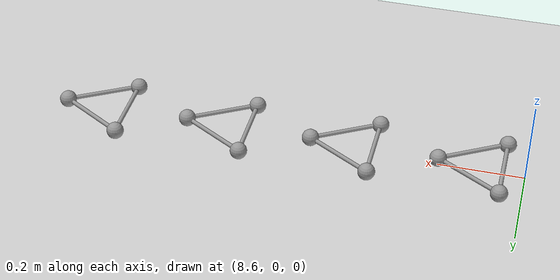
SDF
<sdf version="1.6">
 <world name="default">
  <include><uri>model://ground_plane</uri></include>
  <include><uri>model://sun</uri></include>
  <model name="triball_29">
   <pose>8.7 0 0 0 0 0</pose>
   <link name="link">
    <pose>0 0 0.02 0 0 0</pose>
    <inertial>
     <mass>0.060318578948924034</mass>
     <inertia>
      <ixx>0.000311243867376448</ixx>
      <iyy>0.000311243867376448</iyy>
      <izz>0.0006128367621210681</izz>
      <ixy>0.0</ixy>
      <ixz>0.0</ixz>
      <iyz>0.0</iyz>
     </inertia>
    </inertial>
    <sensor name="imu" type="imu"><always_on>true</always_on></sensor>
    <collision name="collision_a">
     <pose>0.09999999999999999 0 0  0 0 0</pose>
     <geometry><sphere><radius>0.02</radius></sphere></geometry>
     <surface><friction><ode><mu>0.9</mu><mu2>0.9</mu2><fdir1>1 0 0</fdir1></ode></friction></surface>
    </collision>
    <visual name="visual_a">
     <pose>0.09999999999999999 0 0  0 0 0</pose>
     <geometry><sphere><radius>0.02</radius></sphere></geometry>
     <material>
      <script><uri>file://media/materials/scripts/gazebo.material</uri><name>Gazebo/Grey</name></script>
     </material>
    </visual>
    <collision name="collision_a_to_b">
     <pose>0.024999999999999998 0.04330127018922193 0.0  -1.5707962969925737 -1.0471975511965974 1.047197525387029</pose>
     <geometry><cylinder><radius>0.005</radius><length>0.17320508075688773</length></cylinder></geometry>
     <surface><friction><ode><mu>0.9</mu><mu2>0.9</mu2></ode></friction></surface>
    </collision>
    <visual name="visual_a_to_b">
     <pose>0.024999999999999998 0.04330127018922193 0.0  -1.5707962969925737 -1.0471975511965974 1.047197525387029</pose>
     <geometry><cylinder><radius>0.005</radius><length>0.17320508075688773</length></cylinder></geometry>
     <material>
      <script><uri>file://media/materials/scripts/gazebo.material</uri><name>Gazebo/Grey</name></script>
     </material>
    </visual>
    <collision name="collision_a_to_c">
     <pose>0.024999999999999998 -0.04330127018922193 0.0  1.5707962969925737 -1.0471975511965974 -1.047197525387029</pose>
     <geometry><cylinder><radius>0.005</radius><length>0.17320508075688773</length></cylinder></geometry>
     <surface><friction><ode><mu>0.9</mu><mu2>0.9</mu2></ode></friction></surface>
    </collision>
    <visual name="visual_a_to_c">
     <pose>0.024999999999999998 -0.04330127018922193 0.0  1.5707962969925737 -1.0471975511965974 -1.047197525387029</pose>
     <geometry><cylinder><radius>0.005</radius><length>0.17320508075688773</length></cylinder></geometry>
     <material>
      <script><uri>file://media/materials/scripts/gazebo.material</uri><name>Gazebo/Grey</name></script>
     </material>
    </visual>
    <collision name="collision_b">
     <pose>-0.049999999999999996 0.08660254037844387 0  0 0 0</pose>
     <geometry><sphere><radius>0.02</radius></sphere></geometry>
     <surface><friction><ode><mu>0.9</mu><mu2>0.9</mu2><fdir1>1 0 0</fdir1></ode></friction></surface>
    </collision>
    <visual name="visual_b">
     <pose>-0.049999999999999996 0.08660254037844387 0  0 0 0</pose>
     <geometry><sphere><radius>0.02</radius></sphere></geometry>
     <material>
      <script><uri>file://media/materials/scripts/gazebo.material</uri><name>Gazebo/Grey</name></script>
     </material>
    </visual>
    <collision name="collision_b_to_c">
     <pose>-0.049999999999999996 0.0 0.0  1.5707963267948963 -0.0 0.0</pose>
     <geometry><cylinder><radius>0.005</radius><length>0.17320508075688773</length></cylinder></geometry>
     <surface><friction><ode><mu>0.9</mu><mu2>0.9</mu2></ode></friction></surface>
    </collision>
    <visual name="visual_b_to_c">
     <pose>-0.049999999999999996 0.0 0.0  1.5707963267948963 -0.0 0.0</pose>
     <geometry><cylinder><radius>0.005</radius><length>0.17320508075688773</length></cylinder></geometry>
     <material>
      <script><uri>file://media/materials/scripts/gazebo.material</uri><name>Gazebo/Grey</name></script>
     </material>
    </visual>
    <collision name="collision_c">
     <pose>-0.049999999999999996 -0.08660254037844387 0  0 0 0</pose>
     <geometry><sphere><radius>0.02</radius></sphere></geometry>
     <surface><friction><ode><mu>0.9</mu><mu2>0.9</mu2><fdir1>1 0 0</fdir1></ode></friction></surface>
    </collision>
    <visual name="visual_c">
     <pose>-0.049999999999999996 -0.08660254037844387 0  0 0 0</pose>
     <geometry><sphere><radius>0.02</radius></sphere></geometry>
     <material>
      <script><uri>file://media/materials/scripts/gazebo.material</uri><name>Gazebo/Grey</name></script>
     </material>
    </visual>
   </link>
   <plugin name="triball_29" filename="libInitialVelocityPlugin.so">
    <linear>0 15 0</linear>
    <angular>0 0 121.875</angular>
   </plugin>
  </model>
  <model name="triball_30">
   <pose>9.0 0 0 0 0 0</pose>
   <link name="link">
    <pose>0 0 0.02 0 0 0</pose>
    <inertial>
     <mass>0.060318578948924034</mass>
     <inertia>
      <ixx>0.000311243867376448</ixx>
      <iyy>0.000311243867376448</iyy>
      <izz>0.0006128367621210681</izz>
      <ixy>0.0</ixy>
      <ixz>0.0</ixz>
      <iyz>0.0</iyz>
     </inertia>
    </inertial>
    <sensor name="imu" type="imu"><always_on>true</always_on></sensor>
    <collision name="collision_a">
     <pose>0.09999999999999999 0 0  0 0 0</pose>
     <geometry><sphere><radius>0.02</radius></sphere></geometry>
     <surface><friction><ode><mu>0.9</mu><mu2>0.9</mu2><fdir1>1 0 0</fdir1></ode></friction></surface>
    </collision>
    <visual name="visual_a">
     <pose>0.09999999999999999 0 0  0 0 0</pose>
     <geometry><sphere><radius>0.02</radius></sphere></geometry>
     <material>
      <script><uri>file://media/materials/scripts/gazebo.material</uri><name>Gazebo/Grey</name></script>
     </material>
    </visual>
    <collision name="collision_a_to_b">
     <pose>0.024999999999999998 0.04330127018922193 0.0  -1.5707962969925737 -1.0471975511965974 1.047197525387029</pose>
     <geometry><cylinder><radius>0.005</radius><length>0.17320508075688773</length></cylinder></geometry>
     <surface><friction><ode><mu>0.9</mu><mu2>0.9</mu2></ode></friction></surface>
    </collision>
    <visual name="visual_a_to_b">
     <pose>0.024999999999999998 0.04330127018922193 0.0  -1.5707962969925737 -1.0471975511965974 1.047197525387029</pose>
     <geometry><cylinder><radius>0.005</radius><length>0.17320508075688773</length></cylinder></geometry>
     <material>
      <script><uri>file://media/materials/scripts/gazebo.material</uri><name>Gazebo/Grey</name></script>
     </material>
    </visual>
    <collision name="collision_a_to_c">
     <pose>0.024999999999999998 -0.04330127018922193 0.0  1.5707962969925737 -1.0471975511965974 -1.047197525387029</pose>
     <geometry><cylinder><radius>0.005</radius><length>0.17320508075688773</length></cylinder></geometry>
     <surface><friction><ode><mu>0.9</mu><mu2>0.9</mu2></ode></friction></surface>
    </collision>
    <visual name="visual_a_to_c">
     <pose>0.024999999999999998 -0.04330127018922193 0.0  1.5707962969925737 -1.0471975511965974 -1.047197525387029</pose>
     <geometry><cylinder><radius>0.005</radius><length>0.17320508075688773</length></cylinder></geometry>
     <material>
      <script><uri>file://media/materials/scripts/gazebo.material</uri><name>Gazebo/Grey</name></script>
     </material>
    </visual>
    <collision name="collision_b">
     <pose>-0.049999999999999996 0.08660254037844387 0  0 0 0</pose>
     <geometry><sphere><radius>0.02</radius></sphere></geometry>
     <surface><friction><ode><mu>0.9</mu><mu2>0.9</mu2><fdir1>1 0 0</fdir1></ode></friction></surface>
    </collision>
    <visual name="visual_b">
     <pose>-0.049999999999999996 0.08660254037844387 0  0 0 0</pose>
     <geometry><sphere><radius>0.02</radius></sphere></geometry>
     <material>
      <script><uri>file://media/materials/scripts/gazebo.material</uri><name>Gazebo/Grey</name></script>
     </material>
    </visual>
    <collision name="collision_b_to_c">
     <pose>-0.049999999999999996 0.0 0.0  1.5707963267948963 -0.0 0.0</pose>
     <geometry><cylinder><radius>0.005</radius><length>0.17320508075688773</length></cylinder></geometry>
     <surface><friction><ode><mu>0.9</mu><mu2>0.9</mu2></ode></friction></surface>
    </collision>
    <visual name="visual_b_to_c">
     <pose>-0.049999999999999996 0.0 0.0  1.5707963267948963 -0.0 0.0</pose>
     <geometry><cylinder><radius>0.005</radius><length>0.17320508075688773</length></cylinder></geometry>
     <material>
      <script><uri>file://media/materials/scripts/gazebo.material</uri><name>Gazebo/Grey</name></script>
     </material>
    </visual>
    <collision name="collision_c">
     <pose>-0.049999999999999996 -0.08660254037844387 0  0 0 0</pose>
     <geometry><sphere><radius>0.02</radius></sphere></geometry>
     <surface><friction><ode><mu>0.9</mu><mu2>0.9</mu2><fdir1>1 0 0</fdir1></ode></friction></surface>
    </collision>
    <visual name="visual_c">
     <pose>-0.049999999999999996 -0.08660254037844387 0  0 0 0</pose>
     <geometry><sphere><radius>0.02</radius></sphere></geometry>
     <material>
      <script><uri>file://media/materials/scripts/gazebo.material</uri><name>Gazebo/Grey</name></script>
     </material>
    </visual>
   </link>
   <plugin name="triball_30" filename="libInitialVelocityPlugin.so">
    <linear>0 15 0</linear>
    <angular>0 0 131.25</angular>
   </plugin>
  </model>
  <model name="triball_31">
   <pose>9.299999999999999 0 0 0 0 0</pose>
   <link name="link">
    <pose>0 0 0.02 0 0 0</pose>
    <inertial>
     <mass>0.060318578948924034</mass>
     <inertia>
      <ixx>0.000311243867376448</ixx>
      <iyy>0.000311243867376448</iyy>
      <izz>0.0006128367621210681</izz>
      <ixy>0.0</ixy>
      <ixz>0.0</ixz>
      <iyz>0.0</iyz>
     </inertia>
    </inertial>
    <sensor name="imu" type="imu"><always_on>true</always_on></sensor>
    <collision name="collision_a">
     <pose>0.09999999999999999 0 0  0 0 0</pose>
     <geometry><sphere><radius>0.02</radius></sphere></geometry>
     <surface><friction><ode><mu>0.9</mu><mu2>0.9</mu2><fdir1>1 0 0</fdir1></ode></friction></surface>
    </collision>
    <visual name="visual_a">
     <pose>0.09999999999999999 0 0  0 0 0</pose>
     <geometry><sphere><radius>0.02</radius></sphere></geometry>
     <material>
      <script><uri>file://media/materials/scripts/gazebo.material</uri><name>Gazebo/Grey</name></script>
     </material>
    </visual>
    <collision name="collision_a_to_b">
     <pose>0.024999999999999998 0.04330127018922193 0.0  -1.5707962969925737 -1.0471975511965974 1.047197525387029</pose>
     <geometry><cylinder><radius>0.005</radius><length>0.17320508075688773</length></cylinder></geometry>
     <surface><friction><ode><mu>0.9</mu><mu2>0.9</mu2></ode></friction></surface>
    </collision>
    <visual name="visual_a_to_b">
     <pose>0.024999999999999998 0.04330127018922193 0.0  -1.5707962969925737 -1.0471975511965974 1.047197525387029</pose>
     <geometry><cylinder><radius>0.005</radius><length>0.17320508075688773</length></cylinder></geometry>
     <material>
      <script><uri>file://media/materials/scripts/gazebo.material</uri><name>Gazebo/Grey</name></script>
     </material>
    </visual>
    <collision name="collision_a_to_c">
     <pose>0.024999999999999998 -0.04330127018922193 0.0  1.5707962969925737 -1.0471975511965974 -1.047197525387029</pose>
     <geometry><cylinder><radius>0.005</radius><length>0.17320508075688773</length></cylinder></geometry>
     <surface><friction><ode><mu>0.9</mu><mu2>0.9</mu2></ode></friction></surface>
    </collision>
    <visual name="visual_a_to_c">
     <pose>0.024999999999999998 -0.04330127018922193 0.0  1.5707962969925737 -1.0471975511965974 -1.047197525387029</pose>
     <geometry><cylinder><radius>0.005</radius><length>0.17320508075688773</length></cylinder></geometry>
     <material>
      <script><uri>file://media/materials/scripts/gazebo.material</uri><name>Gazebo/Grey</name></script>
     </material>
    </visual>
    <collision name="collision_b">
     <pose>-0.049999999999999996 0.08660254037844387 0  0 0 0</pose>
     <geometry><sphere><radius>0.02</radius></sphere></geometry>
     <surface><friction><ode><mu>0.9</mu><mu2>0.9</mu2><fdir1>1 0 0</fdir1></ode></friction></surface>
    </collision>
    <visual name="visual_b">
     <pose>-0.049999999999999996 0.08660254037844387 0  0 0 0</pose>
     <geometry><sphere><radius>0.02</radius></sphere></geometry>
     <material>
      <script><uri>file://media/materials/scripts/gazebo.material</uri><name>Gazebo/Grey</name></script>
     </material>
    </visual>
    <collision name="collision_b_to_c">
     <pose>-0.049999999999999996 0.0 0.0  1.5707963267948963 -0.0 0.0</pose>
     <geometry><cylinder><radius>0.005</radius><length>0.17320508075688773</length></cylinder></geometry>
     <surface><friction><ode><mu>0.9</mu><mu2>0.9</mu2></ode></friction></surface>
    </collision>
    <visual name="visual_b_to_c">
     <pose>-0.049999999999999996 0.0 0.0  1.5707963267948963 -0.0 0.0</pose>
     <geometry><cylinder><radius>0.005</radius><length>0.17320508075688773</length></cylinder></geometry>
     <material>
      <script><uri>file://media/materials/scripts/gazebo.material</uri><name>Gazebo/Grey</name></script>
     </material>
    </visual>
    <collision name="collision_c">
     <pose>-0.049999999999999996 -0.08660254037844387 0  0 0 0</pose>
     <geometry><sphere><radius>0.02</radius></sphere></geometry>
     <surface><friction><ode><mu>0.9</mu><mu2>0.9</mu2><fdir1>1 0 0</fdir1></ode></friction></surface>
    </collision>
    <visual name="visual_c">
     <pose>-0.049999999999999996 -0.08660254037844387 0  0 0 0</pose>
     <geometry><sphere><radius>0.02</radius></sphere></geometry>
     <material>
      <script><uri>file://media/materials/scripts/gazebo.material</uri><name>Gazebo/Grey</name></script>
     </material>
    </visual>
   </link>
   <plugin name="triball_31" filename="libInitialVelocityPlugin.so">
    <linear>0 15 0</linear>
    <angular>0 0 140.625</angular>
   </plugin>
  </model>
  <model name="triball_32">
   <pose>9.6 0 0 0 0 0</pose>
   <link name="link">
    <pose>0 0 0.02 0 0 0</pose>
    <inertial>
     <mass>0.060318578948924034</mass>
     <inertia>
      <ixx>0.000311243867376448</ixx>
      <iyy>0.000311243867376448</iyy>
      <izz>0.0006128367621210681</izz>
      <ixy>0.0</ixy>
      <ixz>0.0</ixz>
      <iyz>0.0</iyz>
     </inertia>
    </inertial>
    <sensor name="imu" type="imu"><always_on>true</always_on></sensor>
    <collision name="collision_a">
     <pose>0.09999999999999999 0 0  0 0 0</pose>
     <geometry><sphere><radius>0.02</radius></sphere></geometry>
     <surface><friction><ode><mu>0.9</mu><mu2>0.9</mu2><fdir1>1 0 0</fdir1></ode></friction></surface>
    </collision>
    <visual name="visual_a">
     <pose>0.09999999999999999 0 0  0 0 0</pose>
     <geometry><sphere><radius>0.02</radius></sphere></geometry>
     <material>
      <script><uri>file://media/materials/scripts/gazebo.material</uri><name>Gazebo/Grey</name></script>
     </material>
    </visual>
    <collision name="collision_a_to_b">
     <pose>0.024999999999999998 0.04330127018922193 0.0  -1.5707962969925737 -1.0471975511965974 1.047197525387029</pose>
     <geometry><cylinder><radius>0.005</radius><length>0.17320508075688773</length></cylinder></geometry>
     <surface><friction><ode><mu>0.9</mu><mu2>0.9</mu2></ode></friction></surface>
    </collision>
    <visual name="visual_a_to_b">
     <pose>0.024999999999999998 0.04330127018922193 0.0  -1.5707962969925737 -1.0471975511965974 1.047197525387029</pose>
     <geometry><cylinder><radius>0.005</radius><length>0.17320508075688773</length></cylinder></geometry>
     <material>
      <script><uri>file://media/materials/scripts/gazebo.material</uri><name>Gazebo/Grey</name></script>
     </material>
    </visual>
    <collision name="collision_a_to_c">
     <pose>0.024999999999999998 -0.04330127018922193 0.0  1.5707962969925737 -1.0471975511965974 -1.047197525387029</pose>
     <geometry><cylinder><radius>0.005</radius><length>0.17320508075688773</length></cylinder></geometry>
     <surface><friction><ode><mu>0.9</mu><mu2>0.9</mu2></ode></friction></surface>
    </collision>
    <visual name="visual_a_to_c">
     <pose>0.024999999999999998 -0.04330127018922193 0.0  1.5707962969925737 -1.0471975511965974 -1.047197525387029</pose>
     <geometry><cylinder><radius>0.005</radius><length>0.17320508075688773</length></cylinder></geometry>
     <material>
      <script><uri>file://media/materials/scripts/gazebo.material</uri><name>Gazebo/Grey</name></script>
     </material>
    </visual>
    <collision name="collision_b">
     <pose>-0.049999999999999996 0.08660254037844387 0  0 0 0</pose>
     <geometry><sphere><radius>0.02</radius></sphere></geometry>
     <surface><friction><ode><mu>0.9</mu><mu2>0.9</mu2><fdir1>1 0 0</fdir1></ode></friction></surface>
    </collision>
    <visual name="visual_b">
     <pose>-0.049999999999999996 0.08660254037844387 0  0 0 0</pose>
     <geometry><sphere><radius>0.02</radius></sphere></geometry>
     <material>
      <script><uri>file://media/materials/scripts/gazebo.material</uri><name>Gazebo/Grey</name></script>
     </material>
    </visual>
    <collision name="collision_b_to_c">
     <pose>-0.049999999999999996 0.0 0.0  1.5707963267948963 -0.0 0.0</pose>
     <geometry><cylinder><radius>0.005</radius><length>0.17320508075688773</length></cylinder></geometry>
     <surface><friction><ode><mu>0.9</mu><mu2>0.9</mu2></ode></friction></surface>
    </collision>
    <visual name="visual_b_to_c">
     <pose>-0.049999999999999996 0.0 0.0  1.5707963267948963 -0.0 0.0</pose>
     <geometry><cylinder><radius>0.005</radius><length>0.17320508075688773</length></cylinder></geometry>
     <material>
      <script><uri>file://media/materials/scripts/gazebo.material</uri><name>Gazebo/Grey</name></script>
     </material>
    </visual>
    <collision name="collision_c">
     <pose>-0.049999999999999996 -0.08660254037844387 0  0 0 0</pose>
     <geometry><sphere><radius>0.02</radius></sphere></geometry>
     <surface><friction><ode><mu>0.9</mu><mu2>0.9</mu2><fdir1>1 0 0</fdir1></ode></friction></surface>
    </collision>
    <visual name="visual_c">
     <pose>-0.049999999999999996 -0.08660254037844387 0  0 0 0</pose>
     <geometry><sphere><radius>0.02</radius></sphere></geometry>
     <material>
      <script><uri>file://media/materials/scripts/gazebo.material</uri><name>Gazebo/Grey</name></script>
     </material>
    </visual>
   </link>
   <plugin name="triball_32" filename="libInitialVelocityPlugin.so">
    <linear>0 15 0</linear>
    <angular>0 0 150.0</angular>
   </plugin>
  </model>
 </world>
</sdf>
